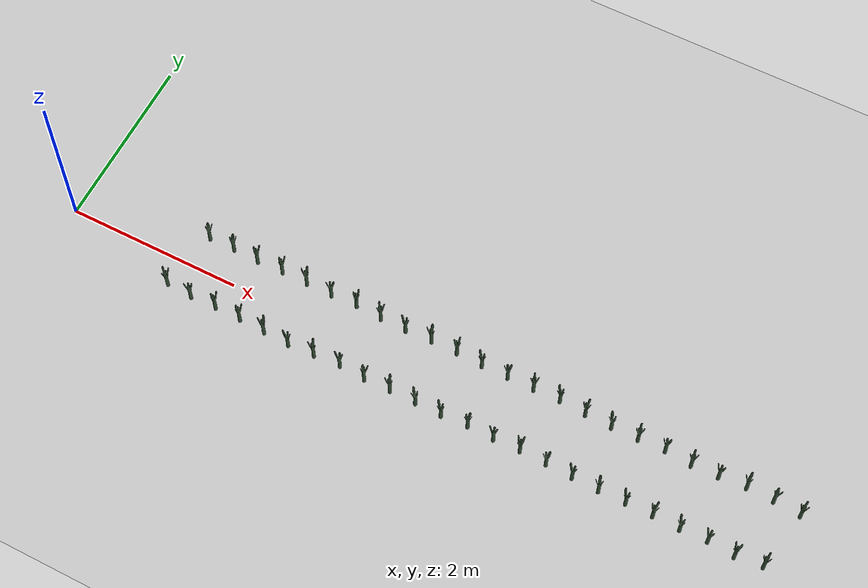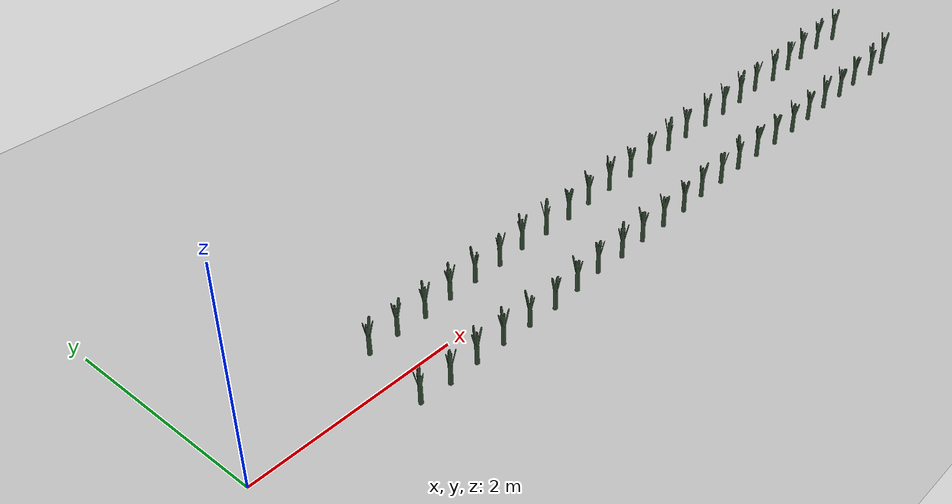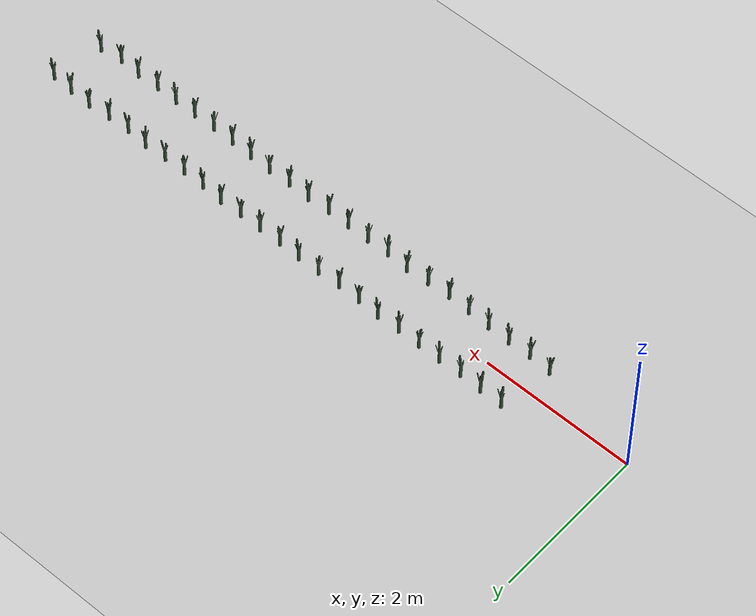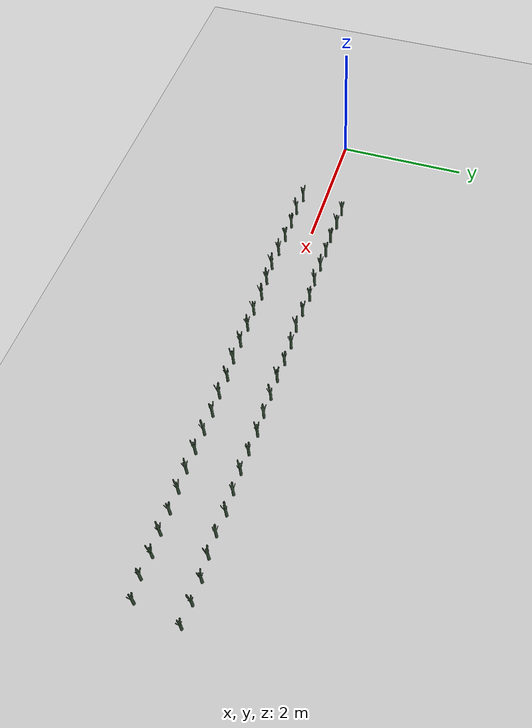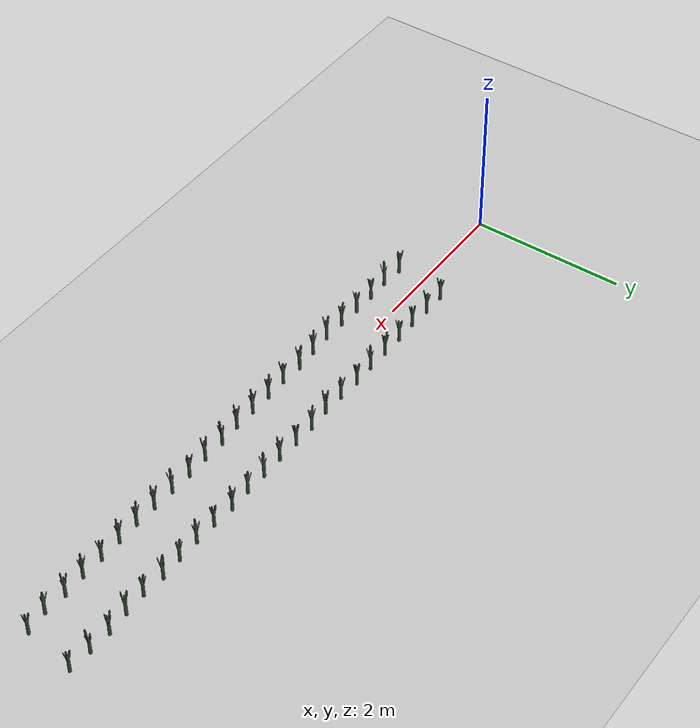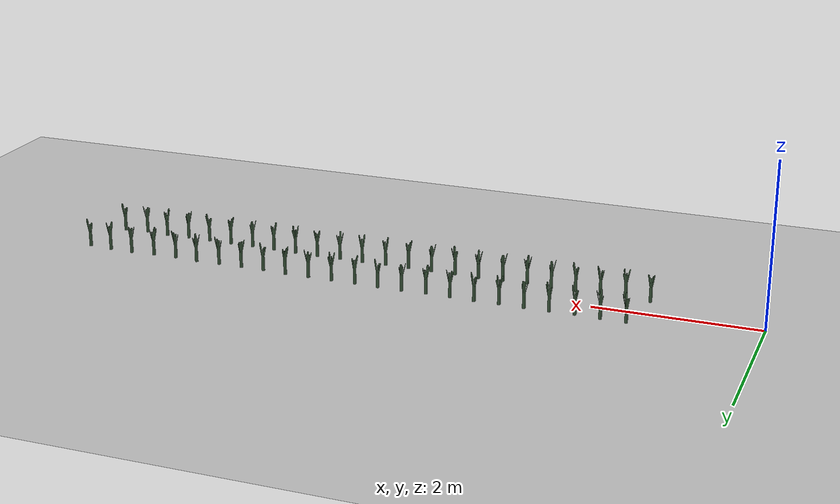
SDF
<sdf version="1.6">
 <world name="default">
  <light name="sun" type="directional">
   <pose>0 0 10 0 -0 0</pose>
   <diffuse>0.5 0.5 0.5 1</diffuse>
   <specular>0.1 0.1 0.1 1</specular>
   <attenuation>
    <range>1000</range>
    <constant>0.9</constant>
    <linear>0.01</linear>
    <quadratic>0.001</quadratic>
   </attenuation>
   <direction>0.9 0.5 -1</direction>
  </light>
  <scene><background>130 200 255 1</background><ambient>130 140 140 1</ambient></scene>
  <include><uri>model://dirt_plane</uri></include>
  <include><uri>model://Leek</uri><pose>1.500000 0.360349 0.15 0 0 93.138848</pose><static>0</static></include>
  <include><uri>model://Leek</uri><pose>1.800000 0.360320 0.15 0 0 92.882297</pose><static>0</static></include>
  <include><uri>model://Leek</uri><pose>2.100000 0.347852 0.15 0 0 -19.336232</pose><static>0</static></include>
  <include><uri>model://Leek</uri><pose>2.400000 0.359701 0.15 0 0 87.311255</pose><static>0</static></include>
  <include><uri>model://Leek</uri><pose>2.700000 0.359255 0.15 0 0 83.292418</pose><static>0</static></include>
  <include><uri>model://Leek</uri><pose>3.000000 0.356715 0.15 0 0 60.438685</pose><static>0</static></include>
  <include><uri>model://Leek</uri><pose>3.300000 0.369511 0.15 0 0 175.601775</pose><static>0</static></include>
  <include><uri>model://Leek</uri><pose>3.600000 0.352169 0.15 0 0 19.523653</pose><static>0</static></include>
  <include><uri>model://Leek</uri><pose>3.900000 0.348237 0.15 0 0 -15.865760</pose><static>0</static></include>
  <include><uri>model://Leek</uri><pose>4.200000 0.364863 0.15 0 0 133.766577</pose><static>0</static></include>
  <include><uri>model://Leek</uri><pose>4.500000 0.363228 0.15 0 0 119.048863</pose><static>0</static></include>
  <include><uri>model://Leek</uri><pose>4.800000 0.351691 0.15 0 0 15.217031</pose><static>0</static></include>
  <include><uri>model://Leek</uri><pose>5.100000 0.356021 0.15 0 0 54.184913</pose><static>0</static></include>
  <include><uri>model://Leek</uri><pose>5.400000 0.354924 0.15 0 0 44.319837</pose><static>0</static></include>
  <include><uri>model://Leek</uri><pose>5.700000 0.367036 0.15 0 0 153.322834</pose><static>0</static></include>
  <include><uri>model://Leek</uri><pose>6.000000 0.346480 0.15 0 0 -31.680018</pose><static>0</static></include>
  <include><uri>model://Leek</uri><pose>6.300000 0.340485 0.15 0 0 -85.637311</pose><static>0</static></include>
  <include><uri>model://Leek</uri><pose>6.600000 0.343733 0.15 0 0 -56.405935</pose><static>0</static></include>
  <include><uri>model://Leek</uri><pose>6.900000 0.358780 0.15 0 0 79.015782</pose><static>0</static></include>
  <include>
   <uri>model://Leek</uri>
   <pose>7.200000 0.332559 0.15 0 0 -156.971349</pose>
   <static>0</static>
  </include>
  <include><uri>model://Leek</uri><pose>7.500000 0.342674 0.15 0 0 -65.931665</pose><static>0</static></include>
  <include><uri>model://Leek</uri><pose>7.800000 0.367633 0.15 0 0 158.698303</pose><static>0</static></include>
  <include><uri>model://Leek</uri><pose>8.100000 0.359593 0.15 0 0 86.339978</pose><static>0</static></include>
  <include>
   <uri>model://Leek</uri>
   <pose>8.400000 0.337407 0.15 0 0 -113.334015</pose>
   <static>0</static>
  </include>
  <include>
   <uri>model://Leek</uri>
   <pose>1.379084 -0.331046 0.15 0 0 170.583778</pose>
   <static>0</static>
  </include>
  <include><uri>model://Leek</uri><pose>1.679084 -0.350969 0.15 0 0 -8.722798</pose><static>0</static></include>
  <include><uri>model://Leek</uri><pose>1.979084 -0.342363 0.15 0 0 68.735681</pose><static>0</static></include>
  <include><uri>model://Leek</uri><pose>2.279084 -0.346574 0.15 0 0 30.835567</pose><static>0</static></include>
  <include>
   <uri>model://Leek</uri>
   <pose>2.579084 -0.358187 0.15 0 0 -73.684096</pose>
   <static>0</static>
  </include>
  <include>
   <uri>model://Leek</uri>
   <pose>2.879084 -0.369890 0.15 0 0 -179.012014</pose>
   <static>0</static>
  </include>
  <include>
   <uri>model://Leek</uri>
   <pose>3.179084 -0.353280 0.15 0 0 -29.518402</pose>
   <static>0</static>
  </include>
  <include>
   <uri>model://Leek</uri>
   <pose>3.479084 -0.332179 0.15 0 0 160.387335</pose>
   <static>0</static>
  </include>
  <include>
   <uri>model://Leek</uri>
   <pose>3.779084 -0.352902 0.15 0 0 -26.121578</pose>
   <static>0</static>
  </include>
  <include><uri>model://Leek</uri><pose>4.079084 -0.344204 0.15 0 0 52.161911</pose><static>0</static></include>
  <include><uri>model://Leek</uri><pose>4.379084 -0.348328 0.15 0 0 15.049679</pose><static>0</static></include>
  <include><uri>model://Leek</uri><pose>4.679084 -0.351093 0.15 0 0 -9.840906</pose><static>0</static></include>
  <include>
   <uri>model://Leek</uri>
   <pose>4.979084 -0.330669 0.15 0 0 173.976456</pose>
   <static>0</static>
  </include>
  <include><uri>model://Leek</uri><pose>5.279084 -0.340560 0.15 0 0 84.960964</pose><static>0</static></include>
  <include>
   <uri>model://Leek</uri>
   <pose>5.579084 -0.330341 0.15 0 0 176.935199</pose>
   <static>0</static>
  </include>
  <include>
   <uri>model://Leek</uri>
   <pose>5.879084 -0.337685 0.15 0 0 110.832663</pose>
   <static>0</static>
  </include>
  <include><uri>model://Leek</uri><pose>6.179084 -0.348987 0.15 0 0 9.117508</pose><static>0</static></include>
  <include>
   <uri>model://Leek</uri>
   <pose>6.479084 -0.356758 0.15 0 0 -60.825100</pose>
   <static>0</static>
  </include>
  <include><uri>model://Leek</uri><pose>6.779084 -0.351109 0.15 0 0 -9.981825</pose><static>0</static></include>
  <include><uri>model://Leek</uri><pose>7.079084 -0.349349 0.15 0 0 5.860006</pose><static>0</static></include>
  <include>
   <uri>model://Leek</uri>
   <pose>7.379084 -0.356022 0.15 0 0 -54.194007</pose>
   <static>0</static>
  </include>
  <include><uri>model://Leek</uri><pose>7.679084 -0.342695 0.15 0 0 65.749212</pose><static>0</static></include>
  <include>
   <uri>model://Leek</uri>
   <pose>7.979084 -0.368065 0.15 0 0 -162.588512</pose>
   <static>0</static>
  </include>
  <include>
   <uri>model://Leek</uri>
   <pose>8.279084 -0.332578 0.15 0 0 156.795733</pose>
   <static>0</static>
  </include>
 </world>
</sdf>

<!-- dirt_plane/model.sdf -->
<sdf version="1.4">
<model name="dirt_plane">
  <static>true</static>
    <link name="link">
      <collision name="collision">
        <geometry>
          <plane>
            <normal>0 0 1</normal>
            <size>100 100</size>
          </plane>
        </geometry>
        <surface>
          <friction>
            <ode>
              <mu>100</mu>
              <mu2>50</mu2>
            </ode>
          </friction>
        </surface>
      </collision>
      <visual name="visual">
        <cast_shadows>false</cast_shadows>
        <geometry>
          <plane>
            <normal>0 0 1</normal>
            <size>100 100</size>
          </plane>
        </geometry>
        <material>
          <script>
            <uri>model://ground_plane/materials/scripts/my_ground_plane.material</uri>
            <uri>model://ground_plane/materials/textures</uri>
            <name>my_ground_plane/Dirt</name>
          </script>
        </material>
      </visual>
    </link>
  </model>
</sdf>

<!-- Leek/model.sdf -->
<sdf version='1.6'>
  <model name='Leek'>
    <link name='link'>
      <pose frame=''>0 0 0 0 -0 0</pose>
      <inertial>
        <mass>1</mass>
        <inertia>
          <ixx>0.145833</ixx>
          <ixy>0</ixy>
          <ixz>0</ixz>
          <iyy>0.145833</iyy>
          <iyz>0</iyz>
          <izz>0.125</izz>
        </inertia>
        <pose frame=''>0 0 0 0 -0 0</pose>
      </inertial>
      <self_collide>0</self_collide>
      <kinematic>0</kinematic>
      <gravity>1</gravity>
      <visual name='visual'>
        <geometry>
          <mesh>
            <uri>model://Leek/Poireau.dae</uri>
            <scale>1 1 1</scale>
          </mesh>
        </geometry>
        <material>
          <script>
            <name>Gazebo/Grey</name>
            <uri>file://media/materials/scripts/gazebo.material</uri>
          </script>
          <ambient>0.3 0.7 0.4 0</ambient>
          <diffuse>0.2 0.3 0.2 0</diffuse>
          <specular>0 0 0 1</specular>
          <emissive>0 0 0 1</emissive>
          <shader type='vertex'>
            <normal_map>__default__</normal_map>
          </shader>
        </material>
        <pose frame=''>0 0 -0.08 0 -0 0</pose>
        <cast_shadows>1</cast_shadows>
        <transparency>0</transparency>
      </visual>
      <collision name='collision'>
        <laser_retro>0</laser_retro>
        <max_contacts>10</max_contacts>
        <pose frame=''>0 0 0 0 -0 0</pose>
        <geometry>
          <cylinder>
            <radius>0.02</radius>
            <length>0.25</length>
          </cylinder>
        </geometry>
        <surface>
          <friction>
            <ode>
              <mu>1</mu>
              <mu2>1</mu2>
              <fdir1>0 0 0</fdir1>
              <slip1>0</slip1>
              <slip2>0</slip2>
            </ode>
            <torsional>
              <coefficient>1</coefficient>
              <patch_radius>0</patch_radius>
              <surface_radius>0</surface_radius>
              <use_patch_radius>1</use_patch_radius>
              <ode>
                <slip>0</slip>
              </ode>
            </torsional>
          </friction>
          <bounce>
            <restitution_coefficient>0</restitution_coefficient>
            <threshold>1e+06</threshold>
          </bounce>
          <contact>
            <collide_without_contact>0</collide_without_contact>
            <collide_without_contact_bitmask>1</collide_without_contact_bitmask>
            <collide_bitmask>1</collide_bitmask>
            <ode>
              <soft_cfm>0</soft_cfm>
              <soft_erp>0.2</soft_erp>
              <kp>1e+13</kp>
              <kd>1</kd>
              <max_vel>0.01</max_vel>
              <min_depth>0</min_depth>
            </ode>
            <bullet>
              <split_impulse>1</split_impulse>
              <split_impulse_penetration_threshold>-0.01</split_impulse_penetration_threshold>
              <soft_cfm>0</soft_cfm>
              <soft_erp>0.2</soft_erp>
              <kp>1e+13</kp>
              <kd>1</kd>
            </bullet>
          </contact>
        </surface>
      </collision>
    </link>
    <static>0</static>
    <allow_auto_disable>1</allow_auto_disable>
  </model>
</sdf>
